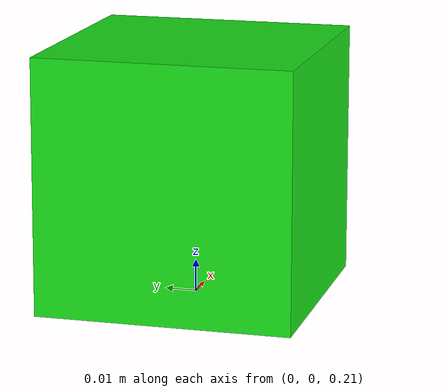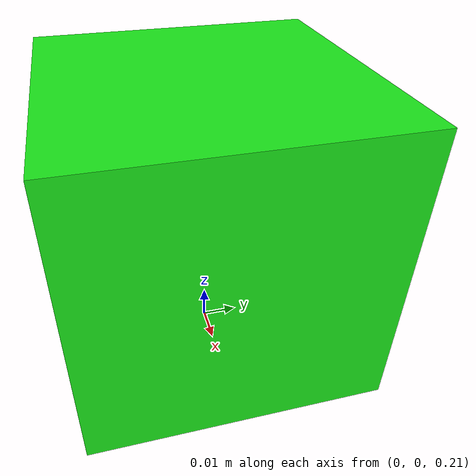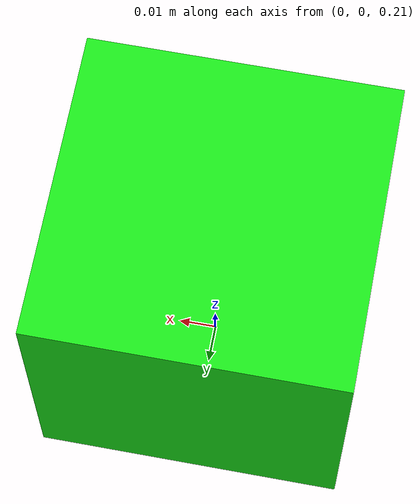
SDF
<?xml version="1.0"?>
<sdf version="1.6">
  <!-- RFID считыватель с характерной дальностью - 2м -->
  <!-- RFID reader / antenna model for Abdu-lybot RFID_antenna_plugin -->
  <model name="rfid_reader">
    <pose>0 0 0.25 0 0 0</pose>
    <static>true</static>

    <link name="base_link">
      <collision name="collision">
        <geometry>
          <box><size>0.08 0.08 0.08</size></box>
        </geometry>
      </collision>

      <visual name="visual">
        <geometry>
          <box><size>0.08 0.08 0.08</size></box>
        </geometry>
        <material>
          <ambient>0.1 0.9 0.1 1</ambient>
          <diffuse>0.1 0.9 0.1 1</diffuse>
        </material>
      </visual>

      <!-- Custom RFID sensor -->
      <sensor name="rfid_antenna" type="rfid">
        <always_on>1</always_on>
        <update_rate>20</update_rate>

        <plugin name="rfid_antenna_plugin" filename="libRFID_antenna_plugin.so">
          <!-- final antenna frame/name is typically antenna_name + antenna_id -->
          <antenna_name>antenna_</antenna_name>
          <antenna_id>1</antenna_id>

          <!-- Tag naming base -->
          <tag_name>rfid_tag</tag_name>

          <!-- Name base used in published detections / spawned visualization models -->
          <detected_tag_name>rfid_tag_</detected_tag_name>
          <detected_tag_colour>blue</detected_tag_colour>

          <!-- Detection model params -->
          <azimuth_beamwidth>1</azimuth_beamwidth>
          <elevation_beamwidth>1</elevation_beamwidth>
          <rzero>2</rzero>

          <!-- IMPORTANT: replace these with ABSOLUTE paths on your machine -->
          <tag_yellow_sdf_path>/ABS/PATH/TO/RFID_antenna_plugin/Models/RFID_3/model.sdf</tag_yellow_sdf_path>
          <tag_red_sdf_path>/ABS/PATH/TO/RFID_antenna_plugin/Models/RFID_2/model.sdf</tag_red_sdf_path>
          <tag_blue_sdf_path>/ABS/PATH/TO/RFID_antenna_plugin/Models/RFID_5/model.sdf</tag_blue_sdf_path>
          <tag_purple_sdf_path>/ABS/PATH/TO/RFID_antenna_plugin/Models/RFID_4/model.sdf</tag_purple_sdf_path>
        </plugin>
      </sensor>
    </link>
  </model>
</sdf>
